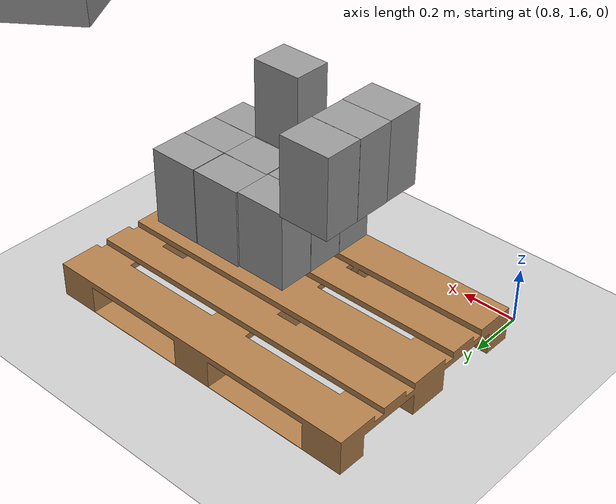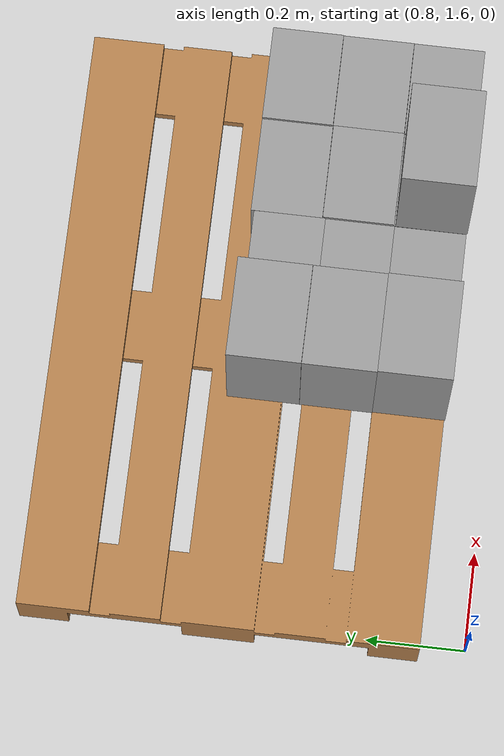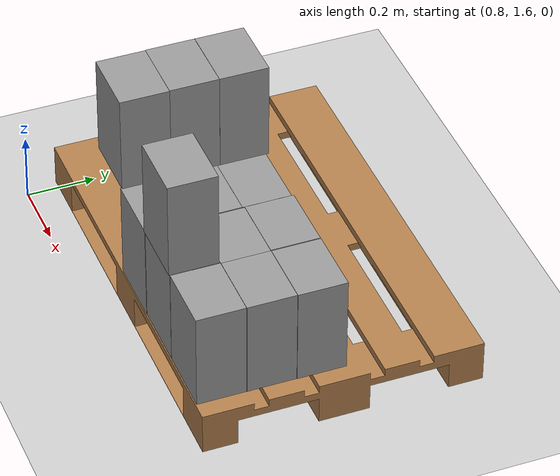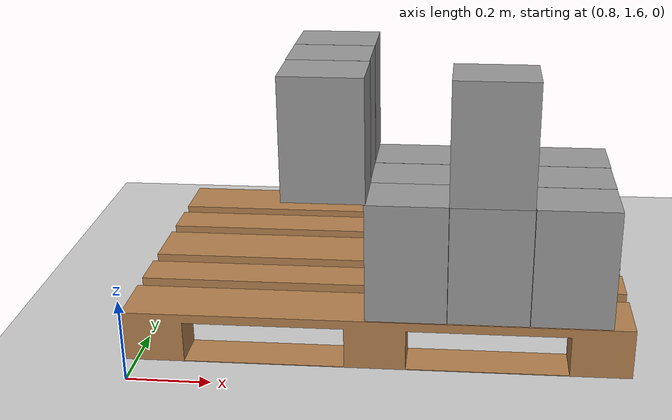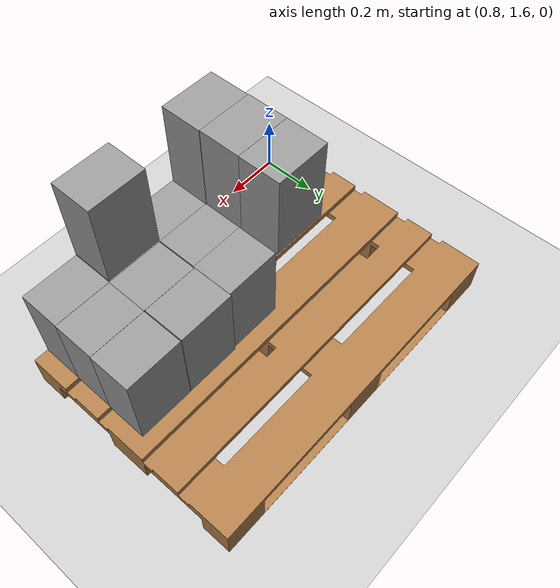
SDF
<sdf version="1.7">
 <world name="default">
  <model name="ground_plane">
   <static>1</static>
   <link name="link">
    <collision name="collision">
     <geometry><plane><normal>0 0 1</normal><size>100 100</size></plane></geometry>
     <surface>
      <contact><collide_bitmask>65535</collide_bitmask></contact>
      <friction><ode><mu>100</mu><mu2>50</mu2></ode></friction>
     </surface>
    </collision>
    <visual name="visual">
     <cast_shadows>0</cast_shadows>
     <geometry><plane><normal>0 0 1</normal><size>100 100</size></plane></geometry>
     <material>
      <script><uri>file://media/materials/scripts/gazebo.material</uri><name>Gazebo/Grey</name></script>
     </material>
    </visual>
   </link>
  </model>
  <model name="pedana">
   <link name="base">
    <inertial>
     <mass>25</mass>
     <inertia><ixx>1.36434</ixx><ixy>0</ixy><ixz>0</ixz><iyy>3.03101</iyy><iyz>0</iyz><izz>4.33333</izz></inertia>
    </inertial>
    <self_collide>1</self_collide>
    <visual name="visual">
     <pose>-0.6 -0.4 -0.083 0 -0 0</pose>
     <geometry>
      <mesh><uri>/home/marco/catkin_ws_iliad/src/iliad/meshes/pallet_base.stl</uri><scale>1 1 1</scale></mesh>
     </geometry>
     <material>
      <lighting>1</lighting>
      <script><uri>file://media/materials/scripts/gazebo.material</uri><name>Gazebo/Wood</name></script>
      <shader type="pixel"><normal_map>__default__</normal_map></shader>
      <ambient>0.3 0.3 0.3 1</ambient>
      <diffuse>0.7 0.7 0.7 1</diffuse>
      <specular>0.01 0.01 0.01 1</specular>
      <emissive>0 0 0 1</emissive>
     </material>
    </visual>
    <collision name="collision">
     <geometry><box><size>1.2 0.8 0.122</size></box></geometry>
     <surface>
      <friction>
       <ode><mu>1</mu><mu2>1</mu2><fdir1>0 0 0</fdir1><slip1>0</slip1><slip2>0</slip2></ode>
       <torsional>
        <coefficient>1</coefficient>
        <patch_radius>0</patch_radius>
        <surface_radius>0</surface_radius>
        <use_patch_radius>1</use_patch_radius>
        <ode><slip>0</slip></ode>
       </torsional>
      </friction>
      <bounce><restitution_coefficient>0</restitution_coefficient><threshold>1e+06</threshold></bounce>
      <contact>
       <collide_without_contact>0</collide_without_contact>
       <collide_without_contact_bitmask>1</collide_without_contact_bitmask>
       <collide_bitmask>1</collide_bitmask>
       <ode>
        <soft_cfm>0</soft_cfm>
        <soft_erp>0.2</soft_erp>
        <kp>1e+13</kp>
        <kd>1</kd>
        <max_vel>0.01</max_vel>
        <min_depth>0</min_depth>
       </ode>
       <bullet>
        <split_impulse>1</split_impulse>
        <split_impulse_penetration_threshold>-0.01</split_impulse_penetration_threshold>
        <soft_cfm>0</soft_cfm>
        <soft_erp>0.2</soft_erp>
        <kp>1e+13</kp>
        <kd>1</kd>
       </bullet>
      </contact>
     </surface>
    </collision>
   </link>
   <static>1</static>
   <pose>1.36911 2.09324 0.060991 3e-05 3.5e-05 4.8e-05</pose>
  </model>
  <model name="box_19_14_29">
   <link name="link_0">
    <inertial>
     <mass>3</mass>
     <inertia>
      <ixx>0.025925</ixx>
      <ixy>0</ixy>
      <ixz>0</ixz>
      <iyy>0.03005</iyy>
      <iyz>0</iyz>
      <izz>0.013925</izz>
     </inertia>
    </inertial>
    <visual name="visual">
     <geometry><box><size>0.19 0.14 0.29</size></box></geometry>
     <material>
      <lighting>1</lighting>
      <script><uri>file://media/materials/scripts/gazebo.material</uri><name>Gazebo/Grey</name></script>
      <shader type="pixel"><normal_map>__default__</normal_map></shader>
      <ambient>0.3 0.3 0.3 1</ambient>
      <diffuse>0.7 0.7 0.7 1</diffuse>
      <specular>0.01 0.01 0.01 1</specular>
      <emissive>0 0 0 1</emissive>
     </material>
    </visual>
    <collision name="collision">
     <geometry><box><size>0.19 0.14 0.29</size></box></geometry>
     <surface>
      <friction>
       <ode><mu>0.6</mu><mu2>0.6</mu2><fdir1>0 0 0</fdir1><slip1>0</slip1><slip2>0</slip2></ode>
       <torsional>
        <coefficient>1</coefficient>
        <patch_radius>0</patch_radius>
        <surface_radius>0</surface_radius>
        <use_patch_radius>1</use_patch_radius>
        <ode><slip>0</slip></ode>
       </torsional>
      </friction>
      <bounce><restitution_coefficient>0</restitution_coefficient><threshold>1e+06</threshold></bounce>
      <contact>
       <collide_without_contact>0</collide_without_contact>
       <collide_without_contact_bitmask>1</collide_without_contact_bitmask>
       <collide_bitmask>1</collide_bitmask>
       <ode>
        <soft_cfm>0</soft_cfm>
        <soft_erp>0.2</soft_erp>
        <kp>1e+13</kp>
        <kd>1</kd>
        <max_vel>0.01</max_vel>
        <min_depth>0.01</min_depth>
       </ode>
       <bullet>
        <split_impulse>1</split_impulse>
        <split_impulse_penetration_threshold>-0.01</split_impulse_penetration_threshold>
        <soft_cfm>0</soft_cfm>
        <soft_erp>0.2</soft_erp>
        <kp>1e+13</kp>
        <kd>1</kd>
       </bullet>
      </contact>
     </surface>
    </collision>
   </link>
   <static>0</static>
   <pose>1.63127 1.76389 0.556988 -3.4e-05 2e-05 -0.001481</pose>
  </model>
  <model name="box_19_14_29_6">
   <link name="link_0">
    <inertial>
     <mass>3</mass>
     <inertia>
      <ixx>0.025925</ixx>
      <ixy>0</ixy>
      <ixz>0</ixz>
      <iyy>0.03005</iyy>
      <iyz>0</iyz>
      <izz>0.013925</izz>
     </inertia>
    </inertial>
    <visual name="visual">
     <geometry><box><size>0.19 0.14 0.29</size></box></geometry>
     <material>
      <lighting>1</lighting>
      <script><uri>file://media/materials/scripts/gazebo.material</uri><name>Gazebo/Grey</name></script>
      <shader type="pixel"><normal_map>__default__</normal_map></shader>
      <ambient>0.3 0.3 0.3 1</ambient>
      <diffuse>0.7 0.7 0.7 1</diffuse>
      <specular>0.01 0.01 0.01 1</specular>
      <emissive>0 0 0 1</emissive>
     </material>
    </visual>
    <collision name="collision">
     <geometry><box><size>0.19 0.14 0.29</size></box></geometry>
     <surface>
      <friction>
       <ode><mu>0.6</mu><mu2>0.6</mu2><fdir1>0 0 0</fdir1><slip1>0</slip1><slip2>0</slip2></ode>
       <torsional>
        <coefficient>1</coefficient>
        <patch_radius>0</patch_radius>
        <surface_radius>0</surface_radius>
        <use_patch_radius>1</use_patch_radius>
        <ode><slip>0</slip></ode>
       </torsional>
      </friction>
      <bounce><restitution_coefficient>0</restitution_coefficient><threshold>1e+06</threshold></bounce>
      <contact>
       <collide_without_contact>0</collide_without_contact>
       <collide_without_contact_bitmask>1</collide_without_contact_bitmask>
       <collide_bitmask>1</collide_bitmask>
       <ode>
        <soft_cfm>0</soft_cfm>
        <soft_erp>0.2</soft_erp>
        <kp>1e+13</kp>
        <kd>1</kd>
        <max_vel>0.01</max_vel>
        <min_depth>0.01</min_depth>
       </ode>
       <bullet>
        <split_impulse>1</split_impulse>
        <split_impulse_penetration_threshold>-0.01</split_impulse_penetration_threshold>
        <soft_cfm>0</soft_cfm>
        <soft_erp>0.2</soft_erp>
        <kp>1e+13</kp>
        <kd>1</kd>
       </bullet>
      </contact>
     </surface>
    </collision>
   </link>
   <static>1</static>
   <pose>1.44105 1.7658 0.267001 0.000567 -0.000129 5.7e-05</pose>
  </model>
  <model name="box_19_14_29_7">
   <link name="link_0">
    <inertial>
     <mass>3</mass>
     <inertia>
      <ixx>0.025925</ixx>
      <ixy>0</ixy>
      <ixz>0</ixz>
      <iyy>0.03005</iyy>
      <iyz>0</iyz>
      <izz>0.013925</izz>
     </inertia>
    </inertial>
    <visual name="visual">
     <geometry><box><size>0.19 0.14 0.29</size></box></geometry>
     <material>
      <lighting>1</lighting>
      <script><uri>file://media/materials/scripts/gazebo.material</uri><name>Gazebo/Grey</name></script>
      <shader type="pixel"><normal_map>__default__</normal_map></shader>
      <ambient>0.3 0.3 0.3 1</ambient>
      <diffuse>0.7 0.7 0.7 1</diffuse>
      <specular>0.01 0.01 0.01 1</specular>
      <emissive>0 0 0 1</emissive>
     </material>
    </visual>
    <collision name="collision">
     <geometry><box><size>0.19 0.14 0.29</size></box></geometry>
     <surface>
      <friction>
       <ode><mu>0.6</mu><mu2>0.6</mu2><fdir1>0 0 0</fdir1><slip1>0</slip1><slip2>0</slip2></ode>
       <torsional>
        <coefficient>1</coefficient>
        <patch_radius>0</patch_radius>
        <surface_radius>0</surface_radius>
        <use_patch_radius>1</use_patch_radius>
        <ode><slip>0</slip></ode>
       </torsional>
      </friction>
      <bounce><restitution_coefficient>0</restitution_coefficient><threshold>1e+06</threshold></bounce>
      <contact>
       <collide_without_contact>0</collide_without_contact>
       <collide_without_contact_bitmask>1</collide_without_contact_bitmask>
       <collide_bitmask>1</collide_bitmask>
       <ode>
        <soft_cfm>0</soft_cfm>
        <soft_erp>0.2</soft_erp>
        <kp>1e+13</kp>
        <kd>1</kd>
        <max_vel>0.01</max_vel>
        <min_depth>0.01</min_depth>
       </ode>
       <bullet>
        <split_impulse>1</split_impulse>
        <split_impulse_penetration_threshold>-0.01</split_impulse_penetration_threshold>
        <soft_cfm>0</soft_cfm>
        <soft_erp>0.2</soft_erp>
        <kp>1e+13</kp>
        <kd>1</kd>
       </bullet>
      </contact>
     </surface>
    </collision>
   </link>
   <static>1</static>
   <pose>1.63192 1.76669 0.266996 3.4e-05 2.3e-05 -0.000499</pose>
  </model>
  <model name="box_19_14_29_8">
   <link name="link_0">
    <inertial>
     <mass>3</mass>
     <inertia>
      <ixx>0.025925</ixx>
      <ixy>0</ixy>
      <ixz>0</ixz>
      <iyy>0.03005</iyy>
      <iyz>0</iyz>
      <izz>0.013925</izz>
     </inertia>
    </inertial>
    <visual name="visual">
     <geometry><box><size>0.19 0.14 0.29</size></box></geometry>
     <material>
      <lighting>1</lighting>
      <script><uri>file://media/materials/scripts/gazebo.material</uri><name>Gazebo/Grey</name></script>
      <shader type="pixel"><normal_map>__default__</normal_map></shader>
      <ambient>0.3 0.3 0.3 1</ambient>
      <diffuse>0.7 0.7 0.7 1</diffuse>
      <specular>0.01 0.01 0.01 1</specular>
      <emissive>0 0 0 1</emissive>
     </material>
    </visual>
    <collision name="collision">
     <geometry><box><size>0.19 0.14 0.29</size></box></geometry>
     <surface>
      <friction>
       <ode><mu>0.6</mu><mu2>0.6</mu2><fdir1>0 0 0</fdir1><slip1>0</slip1><slip2>0</slip2></ode>
       <torsional>
        <coefficient>1</coefficient>
        <patch_radius>0</patch_radius>
        <surface_radius>0</surface_radius>
        <use_patch_radius>1</use_patch_radius>
        <ode><slip>0</slip></ode>
       </torsional>
      </friction>
      <bounce><restitution_coefficient>0</restitution_coefficient><threshold>1e+06</threshold></bounce>
      <contact>
       <collide_without_contact>0</collide_without_contact>
       <collide_without_contact_bitmask>1</collide_without_contact_bitmask>
       <collide_bitmask>1</collide_bitmask>
       <ode>
        <soft_cfm>0</soft_cfm>
        <soft_erp>0.2</soft_erp>
        <kp>1e+13</kp>
        <kd>1</kd>
        <max_vel>0.01</max_vel>
        <min_depth>0.01</min_depth>
       </ode>
       <bullet>
        <split_impulse>1</split_impulse>
        <split_impulse_penetration_threshold>-0.01</split_impulse_penetration_threshold>
        <soft_cfm>0</soft_cfm>
        <soft_erp>0.2</soft_erp>
        <kp>1e+13</kp>
        <kd>1</kd>
       </bullet>
      </contact>
     </surface>
    </collision>
   </link>
   <static>1</static>
   <pose>1.82298 1.76663 0.266992 -1.1e-05 -0.000144 -0.000473</pose>
  </model>
  <model name="box_19_14_29_10">
   <link name="link_0">
    <inertial>
     <mass>3</mass>
     <inertia>
      <ixx>0.025925</ixx>
      <ixy>0</ixy>
      <ixz>0</ixz>
      <iyy>0.03005</iyy>
      <iyz>0</iyz>
      <izz>0.013925</izz>
     </inertia>
    </inertial>
    <visual name="visual">
     <geometry><box><size>0.19 0.14 0.29</size></box></geometry>
     <material>
      <lighting>1</lighting>
      <script><uri>file://media/materials/scripts/gazebo.material</uri><name>Gazebo/Grey</name></script>
      <shader type="pixel"><normal_map>__default__</normal_map></shader>
      <ambient>0.3 0.3 0.3 1</ambient>
      <diffuse>0.7 0.7 0.7 1</diffuse>
      <specular>0.01 0.01 0.01 1</specular>
      <emissive>0 0 0 1</emissive>
     </material>
    </visual>
    <collision name="collision">
     <geometry><box><size>0.19 0.14 0.29</size></box></geometry>
     <surface>
      <friction>
       <ode><mu>0.6</mu><mu2>0.6</mu2><fdir1>0 0 0</fdir1><slip1>0</slip1><slip2>0</slip2></ode>
       <torsional>
        <coefficient>1</coefficient>
        <patch_radius>0</patch_radius>
        <surface_radius>0</surface_radius>
        <use_patch_radius>1</use_patch_radius>
        <ode><slip>0</slip></ode>
       </torsional>
      </friction>
      <bounce><restitution_coefficient>0</restitution_coefficient><threshold>1e+06</threshold></bounce>
      <contact>
       <collide_without_contact>0</collide_without_contact>
       <collide_without_contact_bitmask>1</collide_without_contact_bitmask>
       <collide_bitmask>1</collide_bitmask>
       <ode>
        <soft_cfm>0</soft_cfm>
        <soft_erp>0.2</soft_erp>
        <kp>1e+13</kp>
        <kd>1</kd>
        <max_vel>0.01</max_vel>
        <min_depth>0.01</min_depth>
       </ode>
       <bullet>
        <split_impulse>1</split_impulse>
        <split_impulse_penetration_threshold>-0.01</split_impulse_penetration_threshold>
        <soft_cfm>0</soft_cfm>
        <soft_erp>0.2</soft_erp>
        <kp>1e+13</kp>
        <kd>1</kd>
       </bullet>
      </contact>
     </surface>
    </collision>
   </link>
   <static>1</static>
   <pose>1.44149 1.9058 0.267022 0.000596 -0.000104 1e-06</pose>
  </model>
  <model name="box_19_14_29_11">
   <link name="link_0">
    <inertial>
     <mass>3</mass>
     <inertia>
      <ixx>0.025925</ixx>
      <ixy>0</ixy>
      <ixz>0</ixz>
      <iyy>0.03005</iyy>
      <iyz>0</iyz>
      <izz>0.013925</izz>
     </inertia>
    </inertial>
    <visual name="visual">
     <geometry><box><size>0.19 0.14 0.29</size></box></geometry>
     <material>
      <lighting>1</lighting>
      <script><uri>file://media/materials/scripts/gazebo.material</uri><name>Gazebo/Grey</name></script>
      <shader type="pixel"><normal_map>__default__</normal_map></shader>
      <ambient>0.3 0.3 0.3 1</ambient>
      <diffuse>0.7 0.7 0.7 1</diffuse>
      <specular>0.01 0.01 0.01 1</specular>
      <emissive>0 0 0 1</emissive>
     </material>
    </visual>
    <collision name="collision">
     <geometry><box><size>0.19 0.14 0.29</size></box></geometry>
     <surface>
      <friction>
       <ode><mu>0.6</mu><mu2>0.6</mu2><fdir1>0 0 0</fdir1><slip1>0</slip1><slip2>0</slip2></ode>
       <torsional>
        <coefficient>1</coefficient>
        <patch_radius>0</patch_radius>
        <surface_radius>0</surface_radius>
        <use_patch_radius>1</use_patch_radius>
        <ode><slip>0</slip></ode>
       </torsional>
      </friction>
      <bounce><restitution_coefficient>0</restitution_coefficient><threshold>1e+06</threshold></bounce>
      <contact>
       <collide_without_contact>0</collide_without_contact>
       <collide_without_contact_bitmask>1</collide_without_contact_bitmask>
       <collide_bitmask>1</collide_bitmask>
       <ode>
        <soft_cfm>0</soft_cfm>
        <soft_erp>0.2</soft_erp>
        <kp>1e+13</kp>
        <kd>1</kd>
        <max_vel>0.01</max_vel>
        <min_depth>0.01</min_depth>
       </ode>
       <bullet>
        <split_impulse>1</split_impulse>
        <split_impulse_penetration_threshold>-0.01</split_impulse_penetration_threshold>
        <soft_cfm>0</soft_cfm>
        <soft_erp>0.2</soft_erp>
        <kp>1e+13</kp>
        <kd>1</kd>
       </bullet>
      </contact>
     </surface>
    </collision>
   </link>
   <static>1</static>
   <pose>1.63426 1.90673 0.267021 3e-06 -0.000266 -0.000446</pose>
  </model>
  <model name="box_19_14_29_12">
   <link name="link_0">
    <inertial>
     <mass>3</mass>
     <inertia>
      <ixx>0.025925</ixx>
      <ixy>0</ixy>
      <ixz>0</ixz>
      <iyy>0.03005</iyy>
      <iyz>0</iyz>
      <izz>0.013925</izz>
     </inertia>
    </inertial>
    <visual name="visual">
     <geometry><box><size>0.19 0.14 0.29</size></box></geometry>
     <material>
      <lighting>1</lighting>
      <script><uri>file://media/materials/scripts/gazebo.material</uri><name>Gazebo/Grey</name></script>
      <shader type="pixel"><normal_map>__default__</normal_map></shader>
      <ambient>0.3 0.3 0.3 1</ambient>
      <diffuse>0.7 0.7 0.7 1</diffuse>
      <specular>0.01 0.01 0.01 1</specular>
      <emissive>0 0 0 1</emissive>
     </material>
    </visual>
    <collision name="collision">
     <geometry><box><size>0.19 0.14 0.29</size></box></geometry>
     <surface>
      <friction>
       <ode><mu>0.6</mu><mu2>0.6</mu2><fdir1>0 0 0</fdir1><slip1>0</slip1><slip2>0</slip2></ode>
       <torsional>
        <coefficient>1</coefficient>
        <patch_radius>0</patch_radius>
        <surface_radius>0</surface_radius>
        <use_patch_radius>1</use_patch_radius>
        <ode><slip>0</slip></ode>
       </torsional>
      </friction>
      <bounce><restitution_coefficient>0</restitution_coefficient><threshold>1e+06</threshold></bounce>
      <contact>
       <collide_without_contact>0</collide_without_contact>
       <collide_without_contact_bitmask>1</collide_without_contact_bitmask>
       <collide_bitmask>1</collide_bitmask>
       <ode>
        <soft_cfm>0</soft_cfm>
        <soft_erp>0.2</soft_erp>
        <kp>1e+13</kp>
        <kd>1</kd>
        <max_vel>0.01</max_vel>
        <min_depth>0.01</min_depth>
       </ode>
       <bullet>
        <split_impulse>1</split_impulse>
        <split_impulse_penetration_threshold>-0.01</split_impulse_penetration_threshold>
        <soft_cfm>0</soft_cfm>
        <soft_erp>0.2</soft_erp>
        <kp>1e+13</kp>
        <kd>1</kd>
       </bullet>
      </contact>
     </surface>
    </collision>
   </link>
   <static>1</static>
   <pose>1.82353 1.90704 0.267011 -4.8e-05 7.3e-05 -0.000626</pose>
  </model>
  <model name="box_19_14_29_14">
   <link name="link_0">
    <inertial>
     <mass>3</mass>
     <inertia>
      <ixx>0.025925</ixx>
      <ixy>0</ixy>
      <ixz>0</ixz>
      <iyy>0.03005</iyy>
      <iyz>0</iyz>
      <izz>0.013925</izz>
     </inertia>
    </inertial>
    <visual name="visual">
     <geometry><box><size>0.19 0.14 0.29</size></box></geometry>
     <material>
      <lighting>1</lighting>
      <script><uri>file://media/materials/scripts/gazebo.material</uri><name>Gazebo/Grey</name></script>
      <shader type="pixel"><normal_map>__default__</normal_map></shader>
      <ambient>0.3 0.3 0.3 1</ambient>
      <diffuse>0.7 0.7 0.7 1</diffuse>
      <specular>0.01 0.01 0.01 1</specular>
      <emissive>0 0 0 1</emissive>
     </material>
    </visual>
    <collision name="collision">
     <geometry><box><size>0.19 0.14 0.29</size></box></geometry>
     <surface>
      <friction>
       <ode><mu>0.6</mu><mu2>0.6</mu2><fdir1>0 0 0</fdir1><slip1>0</slip1><slip2>0</slip2></ode>
       <torsional>
        <coefficient>1</coefficient>
        <patch_radius>0</patch_radius>
        <surface_radius>0</surface_radius>
        <use_patch_radius>1</use_patch_radius>
        <ode><slip>0</slip></ode>
       </torsional>
      </friction>
      <bounce><restitution_coefficient>0</restitution_coefficient><threshold>1e+06</threshold></bounce>
      <contact>
       <collide_without_contact>0</collide_without_contact>
       <collide_without_contact_bitmask>1</collide_without_contact_bitmask>
       <collide_bitmask>1</collide_bitmask>
       <ode>
        <soft_cfm>0</soft_cfm>
        <soft_erp>0.2</soft_erp>
        <kp>1e+13</kp>
        <kd>1</kd>
        <max_vel>0.01</max_vel>
        <min_depth>0.01</min_depth>
       </ode>
       <bullet>
        <split_impulse>1</split_impulse>
        <split_impulse_penetration_threshold>-0.01</split_impulse_penetration_threshold>
        <soft_cfm>0</soft_cfm>
        <soft_erp>0.2</soft_erp>
        <kp>1e+13</kp>
        <kd>1</kd>
       </bullet>
      </contact>
     </surface>
    </collision>
   </link>
   <static>1</static>
   <pose>1.44218 2.04068 0.267112 -0.001522 -9.8e-05 0.000664</pose>
  </model>
  <model name="box_19_14_29_15">
   <link name="link_0">
    <inertial>
     <mass>3</mass>
     <inertia>
      <ixx>0.025925</ixx>
      <ixy>0</ixy>
      <ixz>0</ixz>
      <iyy>0.03005</iyy>
      <iyz>0</iyz>
      <izz>0.013925</izz>
     </inertia>
    </inertial>
    <visual name="visual">
     <geometry><box><size>0.19 0.14 0.29</size></box></geometry>
     <material>
      <lighting>1</lighting>
      <script><uri>file://media/materials/scripts/gazebo.material</uri><name>Gazebo/Grey</name></script>
      <shader type="pixel"><normal_map>__default__</normal_map></shader>
      <ambient>0.3 0.3 0.3 1</ambient>
      <diffuse>0.7 0.7 0.7 1</diffuse>
      <specular>0.01 0.01 0.01 1</specular>
      <emissive>0 0 0 1</emissive>
     </material>
    </visual>
    <collision name="collision">
     <geometry><box><size>0.19 0.14 0.29</size></box></geometry>
     <surface>
      <friction>
       <ode><mu>0.6</mu><mu2>0.6</mu2><fdir1>0 0 0</fdir1><slip1>0</slip1><slip2>0</slip2></ode>
       <torsional>
        <coefficient>1</coefficient>
        <patch_radius>0</patch_radius>
        <surface_radius>0</surface_radius>
        <use_patch_radius>1</use_patch_radius>
        <ode><slip>0</slip></ode>
       </torsional>
      </friction>
      <bounce><restitution_coefficient>0</restitution_coefficient><threshold>1e+06</threshold></bounce>
      <contact>
       <collide_without_contact>0</collide_without_contact>
       <collide_without_contact_bitmask>1</collide_without_contact_bitmask>
       <collide_bitmask>1</collide_bitmask>
       <ode>
        <soft_cfm>0</soft_cfm>
        <soft_erp>0.2</soft_erp>
        <kp>1e+13</kp>
        <kd>1</kd>
        <max_vel>0.01</max_vel>
        <min_depth>0.01</min_depth>
       </ode>
       <bullet>
        <split_impulse>1</split_impulse>
        <split_impulse_penetration_threshold>-0.01</split_impulse_penetration_threshold>
        <soft_cfm>0</soft_cfm>
        <soft_erp>0.2</soft_erp>
        <kp>1e+13</kp>
        <kd>1</kd>
       </bullet>
      </contact>
     </surface>
    </collision>
   </link>
   <static>1</static>
   <pose>1.6322 2.04704 0.266999 -9.9e-05 -6.2e-05 0.000618</pose>
  </model>
  <model name="box_19_14_29_16">
   <link name="link_0">
    <inertial>
     <mass>3</mass>
     <inertia>
      <ixx>0.025925</ixx>
      <ixy>0</ixy>
      <ixz>0</ixz>
      <iyy>0.03005</iyy>
      <iyz>0</iyz>
      <izz>0.013925</izz>
     </inertia>
    </inertial>
    <visual name="visual">
     <geometry><box><size>0.19 0.14 0.29</size></box></geometry>
     <material>
      <lighting>1</lighting>
      <script><uri>file://media/materials/scripts/gazebo.material</uri><name>Gazebo/Grey</name></script>
      <shader type="pixel"><normal_map>__default__</normal_map></shader>
      <ambient>0.3 0.3 0.3 1</ambient>
      <diffuse>0.7 0.7 0.7 1</diffuse>
      <specular>0.01 0.01 0.01 1</specular>
      <emissive>0 0 0 1</emissive>
     </material>
    </visual>
    <collision name="collision">
     <geometry><box><size>0.19 0.14 0.29</size></box></geometry>
     <surface>
      <friction>
       <ode><mu>0.6</mu><mu2>0.6</mu2><fdir1>0 0 0</fdir1><slip1>0</slip1><slip2>0</slip2></ode>
       <torsional>
        <coefficient>1</coefficient>
        <patch_radius>0</patch_radius>
        <surface_radius>0</surface_radius>
        <use_patch_radius>1</use_patch_radius>
        <ode><slip>0</slip></ode>
       </torsional>
      </friction>
      <bounce><restitution_coefficient>0</restitution_coefficient><threshold>1e+06</threshold></bounce>
      <contact>
       <collide_without_contact>0</collide_without_contact>
       <collide_without_contact_bitmask>1</collide_without_contact_bitmask>
       <collide_bitmask>1</collide_bitmask>
       <ode>
        <soft_cfm>0</soft_cfm>
        <soft_erp>0.2</soft_erp>
        <kp>1e+13</kp>
        <kd>1</kd>
        <max_vel>0.01</max_vel>
        <min_depth>0.01</min_depth>
       </ode>
       <bullet>
        <split_impulse>1</split_impulse>
        <split_impulse_penetration_threshold>-0.01</split_impulse_penetration_threshold>
        <soft_cfm>0</soft_cfm>
        <soft_erp>0.2</soft_erp>
        <kp>1e+13</kp>
        <kd>1</kd>
       </bullet>
      </contact>
     </surface>
    </collision>
   </link>
   <static>1</static>
   <pose>1.82482 2.04744 0.267008 9e-06 3e-06 -0.001067</pose>
  </model>
  <model name="transporter">
   <link name="link_0">
    <inertial>
     <mass>1.05863</mass>
     <inertia>
      <ixx>2.63027</ixx>
      <ixy>0</ixy>
      <ixz>0</ixz>
      <iyy>0.0914909</iyy>
      <iyz>0</iyz>
      <izz>2.71522</izz>
     </inertia>
    </inertial>
    <pose>0 0 -0 0.04625 -0 0</pose>
    <kinematic>1</kinematic>
    <visual name="visual">
     <geometry><box><size>1 5.45693 0.192575</size></box></geometry>
     <material>
      <lighting>1</lighting>
      <script><uri>file://media/materials/scripts/gazebo.material</uri><name>Gazebo/Grey</name></script>
      <shader type="pixel"><normal_map>__default__</normal_map></shader>
      <ambient>0.3 0.3 0.3 1</ambient>
      <diffuse>0.7 0.7 0.7 1</diffuse>
      <specular>0.01 0.01 0.01 1</specular>
      <emissive>0 0 0 1</emissive>
     </material>
    </visual>
    <collision name="collision">
     <geometry><box><size>1 5.45693 0.192575</size></box></geometry>
     <surface>
      <friction>
       <ode><mu>0</mu><mu2>3.46945e-18</mu2><fdir1>0 0 0</fdir1><slip1>0</slip1><slip2>0</slip2></ode>
       <torsional>
        <coefficient>1</coefficient>
        <patch_radius>0</patch_radius>
        <surface_radius>0</surface_radius>
        <use_patch_radius>1</use_patch_radius>
        <ode><slip>0</slip></ode>
       </torsional>
      </friction>
      <bounce><restitution_coefficient>0</restitution_coefficient><threshold>1e+06</threshold></bounce>
      <contact>
       <collide_without_contact>0</collide_without_contact>
       <collide_without_contact_bitmask>1</collide_without_contact_bitmask>
       <collide_bitmask>1</collide_bitmask>
       <ode>
        <soft_cfm>0</soft_cfm>
        <soft_erp>0.2</soft_erp>
        <kp>1e+13</kp>
        <kd>1</kd>
        <max_vel>0.01</max_vel>
        <min_depth>0</min_depth>
       </ode>
       <bullet>
        <split_impulse>1</split_impulse>
        <split_impulse_penetration_threshold>-0.01</split_impulse_penetration_threshold>
        <soft_cfm>0</soft_cfm>
        <soft_erp>0.2</soft_erp>
        <kp>1e+13</kp>
        <kd>1</kd>
       </bullet>
      </contact>
     </surface>
    </collision>
   </link>
   <static>1</static>
   <pose>5.63382 2.43764 0.210817 0 -0 2.1066</pose>
  </model>
  <model name="box_19_14_29_24">
   <link name="link_0">
    <inertial>
     <mass>3</mass>
     <inertia>
      <ixx>0.025925</ixx>
      <ixy>0</ixy>
      <ixz>0</ixz>
      <iyy>0.03005</iyy>
      <iyz>0</iyz>
      <izz>0.013925</izz>
     </inertia>
    </inertial>
    <visual name="visual">
     <geometry><box><size>0.19 0.14 0.29</size></box></geometry>
     <material>
      <lighting>1</lighting>
      <script><uri>file://media/materials/scripts/gazebo.material</uri><name>Gazebo/Grey</name></script>
      <shader type="pixel"><normal_map>__default__</normal_map></shader>
      <ambient>0.3 0.3 0.3 1</ambient>
      <diffuse>0.7 0.7 0.7 1</diffuse>
      <specular>0.01 0.01 0.01 1</specular>
      <emissive>0 0 0 1</emissive>
     </material>
    </visual>
    <collision name="collision">
     <geometry><box><size>0.19 0.14 0.29</size></box></geometry>
     <surface>
      <friction>
       <ode><mu>0.6</mu><mu2>0.6</mu2><fdir1>0 0 0</fdir1><slip1>0</slip1><slip2>0</slip2></ode>
       <torsional>
        <coefficient>1</coefficient>
        <patch_radius>0</patch_radius>
        <surface_radius>0</surface_radius>
        <use_patch_radius>1</use_patch_radius>
        <ode><slip>0</slip></ode>
       </torsional>
      </friction>
      <bounce><restitution_coefficient>0</restitution_coefficient><threshold>1e+06</threshold></bounce>
      <contact>
       <collide_without_contact>0</collide_without_contact>
       <collide_without_contact_bitmask>1</collide_without_contact_bitmask>
       <collide_bitmask>1</collide_bitmask>
       <ode>
        <soft_cfm>0</soft_cfm>
        <soft_erp>0.2</soft_erp>
        <kp>1e+13</kp>
        <kd>1</kd>
        <max_vel>0.01</max_vel>
        <min_depth>0.01</min_depth>
       </ode>
       <bullet>
        <split_impulse>1</split_impulse>
        <split_impulse_penetration_threshold>-0.01</split_impulse_penetration_threshold>
        <soft_cfm>0</soft_cfm>
        <soft_erp>0.2</soft_erp>
        <kp>1e+13</kp>
        <kd>1</kd>
       </bullet>
      </contact>
     </surface>
    </collision>
   </link>
   <static>1</static>
   <pose>1.2539 2.04918 0.557084 -0.00042 -0.000769 -0.001884</pose>
  </model>
  <model name="box_19_14_29_25">
   <link name="link_0">
    <inertial>
     <mass>3</mass>
     <inertia>
      <ixx>0.025925</ixx>
      <ixy>0</ixy>
      <ixz>0</ixz>
      <iyy>0.03005</iyy>
      <iyz>0</iyz>
      <izz>0.013925</izz>
     </inertia>
    </inertial>
    <visual name="visual">
     <geometry><box><size>0.19 0.14 0.29</size></box></geometry>
     <material>
      <lighting>1</lighting>
      <script><uri>file://media/materials/scripts/gazebo.material</uri><name>Gazebo/Grey</name></script>
      <shader type="pixel"><normal_map>__default__</normal_map></shader>
      <ambient>0.3 0.3 0.3 1</ambient>
      <diffuse>0.7 0.7 0.7 1</diffuse>
      <specular>0.01 0.01 0.01 1</specular>
      <emissive>0 0 0 1</emissive>
     </material>
    </visual>
    <collision name="collision">
     <geometry><box><size>0.19 0.14 0.29</size></box></geometry>
     <surface>
      <friction>
       <ode><mu>0.6</mu><mu2>0.6</mu2><fdir1>0 0 0</fdir1><slip1>0</slip1><slip2>0</slip2></ode>
       <torsional>
        <coefficient>1</coefficient>
        <patch_radius>0</patch_radius>
        <surface_radius>0</surface_radius>
        <use_patch_radius>1</use_patch_radius>
        <ode><slip>0</slip></ode>
       </torsional>
      </friction>
      <bounce><restitution_coefficient>0</restitution_coefficient><threshold>1e+06</threshold></bounce>
      <contact>
       <collide_without_contact>0</collide_without_contact>
       <collide_without_contact_bitmask>1</collide_without_contact_bitmask>
       <collide_bitmask>1</collide_bitmask>
       <ode>
        <soft_cfm>0</soft_cfm>
        <soft_erp>0.2</soft_erp>
        <kp>1e+13</kp>
        <kd>1</kd>
        <max_vel>0.01</max_vel>
        <min_depth>0.01</min_depth>
       </ode>
       <bullet>
        <split_impulse>1</split_impulse>
        <split_impulse_penetration_threshold>-0.01</split_impulse_penetration_threshold>
        <soft_cfm>0</soft_cfm>
        <soft_erp>0.2</soft_erp>
        <kp>1e+13</kp>
        <kd>1</kd>
       </bullet>
      </contact>
     </surface>
    </collision>
   </link>
   <static>1</static>
   <pose>1.25349 1.90902 0.557079 0.000433 -0.000983 -0.001344</pose>
  </model>
  <model name="box_19_14_29_26">
   <link name="link_0">
    <inertial>
     <mass>3</mass>
     <inertia>
      <ixx>0.025925</ixx>
      <ixy>0</ixy>
      <ixz>0</ixz>
      <iyy>0.03005</iyy>
      <iyz>0</iyz>
      <izz>0.013925</izz>
     </inertia>
    </inertial>
    <visual name="visual">
     <geometry><box><size>0.19 0.14 0.29</size></box></geometry>
     <material>
      <lighting>1</lighting>
      <script><uri>file://media/materials/scripts/gazebo.material</uri><name>Gazebo/Grey</name></script>
      <shader type="pixel"><normal_map>__default__</normal_map></shader>
      <ambient>0.3 0.3 0.3 1</ambient>
      <diffuse>0.7 0.7 0.7 1</diffuse>
      <specular>0.01 0.01 0.01 1</specular>
      <emissive>0 0 0 1</emissive>
     </material>
    </visual>
    <collision name="collision">
     <geometry><box><size>0.19 0.14 0.29</size></box></geometry>
     <surface>
      <friction>
       <ode><mu>0.6</mu><mu2>0.6</mu2><fdir1>0 0 0</fdir1><slip1>0</slip1><slip2>0</slip2></ode>
       <torsional>
        <coefficient>1</coefficient>
        <patch_radius>0</patch_radius>
        <surface_radius>0</surface_radius>
        <use_patch_radius>1</use_patch_radius>
        <ode><slip>0</slip></ode>
       </torsional>
      </friction>
      <bounce><restitution_coefficient>0</restitution_coefficient><threshold>1e+06</threshold></bounce>
      <contact>
       <collide_without_contact>0</collide_without_contact>
       <collide_without_contact_bitmask>1</collide_without_contact_bitmask>
       <collide_bitmask>1</collide_bitmask>
       <ode>
        <soft_cfm>0</soft_cfm>
        <soft_erp>0.2</soft_erp>
        <kp>1e+13</kp>
        <kd>1</kd>
        <max_vel>0.01</max_vel>
        <min_depth>0.01</min_depth>
       </ode>
       <bullet>
        <split_impulse>1</split_impulse>
        <split_impulse_penetration_threshold>-0.01</split_impulse_penetration_threshold>
        <soft_cfm>0</soft_cfm>
        <soft_erp>0.2</soft_erp>
        <kp>1e+13</kp>
        <kd>1</kd>
       </bullet>
      </contact>
     </surface>
    </collision>
   </link>
   <static>1</static>
   <pose>1.25476 1.76901 0.556978 0.000465 -9.3e-05 -0.00145</pose>
  </model>
 </world>
</sdf>
